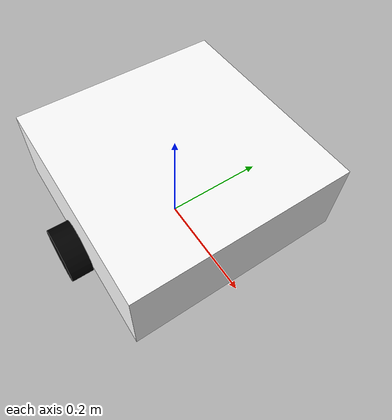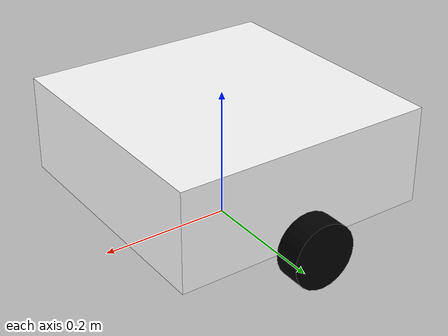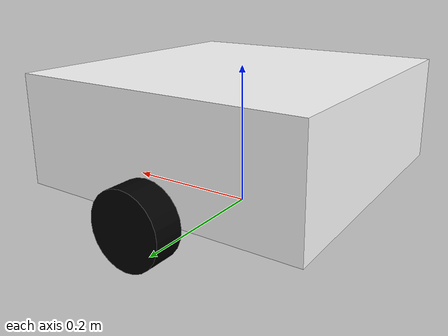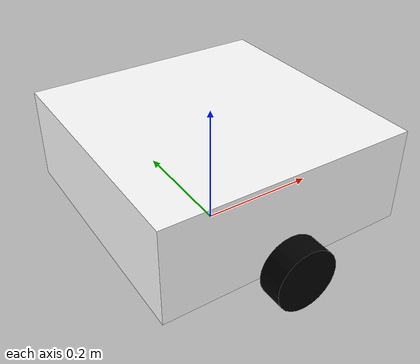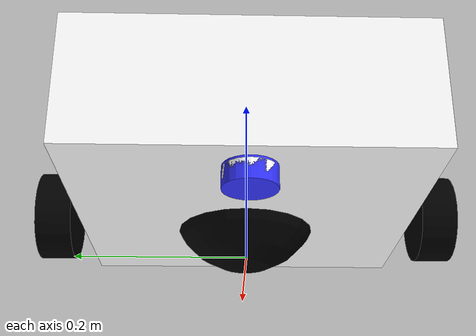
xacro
<?xml version="1.0"?>
<robot xmlns:xacro="http://www.ros.org/wiki/xacro"  name="robot">

<xacro:include filename="inertia_macro.xacro"/>

<material name="white">
    <color rgba = "1 1 1 1"/>
</material>

<material name="orange">
    <color rgba="1 0.3 0.1 1" />
</material>

<material name="blue">
    <color rgba="0.2 0.2 1 1" />
</material>

<material name ="black">
    <color rgba="0 0 0 1" />
</material>

<link name="base_link">

</link>

<joint name="chassis_joint" type="fixed">
    <parent link="base_link"/>
    <child link="chassis" />
    <origin xyz="-0.2 0 0.05"/>
</joint>

<link name="chassis">
<visual>
    <origin xyz="0.2 0 0.075" />
    <geometry>
        <box size ="0.4 0.4 0.15" />
    </geometry>
    <material name="white" />
</visual>
<collision>
    <origin xyz="0.2 0 0.075" />
    <geometry>
        <box size ="0.4 0.4 0.15" />
    </geometry>
</collision>
<xacro:inertial_box mass="0.5" x="0.4" y="0.4" z="0.15">
    <origin xyz="0.2 0 0.075" rpy="0 0 0"/>
</xacro:inertial_box>

</link>

<gazebo reference = "chassis">
<visual><material>
    <ambient>1 1 1 1</ambient>
    <diffuse>1 1 1 1</diffuse>
    <specular>1 1 1 1</specular>
</material></visual>
</gazebo>

<joint name="left_wheel_joint" type="continuous">
    <parent link="base_link"/>
    <child link="left_wheel"/>
    <origin xyz="0 0.22 0.05"/>
    <axis xyz="0 1 0" />
</joint>

<link name="left_wheel">
<visual>
    <origin xyz="0 0 0" rpy="1.5708 0 0"/>
    <geometry>
        <cylinder radius="0.05" length="0.04"/>
    </geometry>
    <material name="black"/>
</visual>
<collision>
    <origin xyz="0 0 0" rpy="1.5708 0 0"/>
    <geometry>
        <cylinder radius="0.05" length="0.04"/>
    </geometry>
</collision>
<xacro:inertial_cylinder mass="0.1" length="0.04" radius="0.05">
    <origin xyz="0 0 0" rpy="1.5708 0 0"/>
</xacro:inertial_cylinder>
</link>

<gazebo reference="left_wheel">
<visual><material>
    <ambient>0 0 0 1</ambient>
    <diffuse>0 0 0 1</diffuse>
    <specular>0 0 0 1</specular>
</material></visual>
</gazebo>

<joint name="right_wheel_joint" type="continuous">
    <parent link="base_link"/>
    <child link="right_wheel"/>
    <origin xyz="0 -0.22 0.05"/>
    <axis xyz="0 1 0" />
</joint>

<link name="right_wheel">
<visual>
    <origin xyz="0 0 0" rpy="1.5708 0 0"/>
    <geometry>
        <cylinder radius="0.05" length="0.04" />
    </geometry>
    <material name="black"/>
</visual>
<collision>
    <origin xyz="0 0 0" rpy="1.5708 0 0"/>
    <geometry>
        <cylinder radius="0.05" length="0.04" />
    </geometry>
</collision>
<xacro:inertial_cylinder mass="0.1" length="0.04" radius="0.05">
    <origin xyz="0 0 0" rpy="1.5708 0 0" />
</xacro:inertial_cylinder>
</link>

<gazebo reference="right_wheel">
<visual><material>
    <ambient>0 0 0 1</ambient>
    <diffuse>0 0 0 1</diffuse>
    <specular>0 0 0 1</specular>
</material></visual>
</gazebo>

<joint name ="caster_wheel_joint" type="fixed">
    <parent link="chassis"/>
    <child link="caster_wheel" />
    <origin xyz="0.25 0 0.045" />
</joint>

<link name="caster_wheel">
<visual>
    <origin xyz="0 0 0" rpy="0 0 0"/>
    <geometry>
        <sphere radius="0.095"/>
    </geometry>
    <material name="black"/>
</visual>
<collision>
    <origin xyz="0 0 0" rpy="0 0 0"/>
    <geometry>
        <sphere radius="0.095"/>
    </geometry>
</collision>
<xacro:inertial_sphere mass="0.1" radius="0.095">
    <origin xyz="0 0 0" rpy="0 0 0" />
</xacro:inertial_sphere>
</link>

<gazebo reference="caster_wheel">
<visual><material>
    <ambient>0.2 0.2 1 1</ambient>
    <diffuse>0.2 0.2 1 1</diffuse>
    <specular>0.2 0.2 1 1</specular>
</material></visual>
<mu1 value="0.001"/>
<mu2 value="0.001"/>
</gazebo>

<joint name="dvl_joint" type="fixed">
    <parent link="chassis"/>
    <child link="dvl_link"/>
    <origin xyz="0.05 0 -0.01" rpy="0 0 0"/>
</joint>

<link name="dvl_link">
<visual>
    <origin xyz="0 0 0" rpy="0 0 0"/>
    <geometry>
        <cylinder radius="0.03" length="0.03"/>
    </geometry>
    <material name="blue" />
</visual>
<collision>
    <origin xyz="0 0 0" rpy="0 0 0"/>
    <geometry>
        <cylinder radius="0.03" length="0.03" />
    </geometry>
</collision>
</link>

<joint name="dvl_frame_joint" type="fixed">
    <parent link="dvl_link"/>
    <child link="dvl_frame"/>
    <origin xyz="0 0 0" rpy="0 3.14159 0"/>
</joint>

<link name="dvl_frame">
<visual>
    <origin xyz="0 0 0" rpy="0 0 0"/>
    <geometry>
        <cylinder radius="0.03" length="0.015"/>
    </geometry>
    <material name="white"/>
</visual>
<collision>
    <origin xyz="0 0 0" rpy="0 0 0"/>
    <geometry>
        <cylinder radius="0.03" length="0.015"/>
    </geometry>
</collision>
</link>
</robot>

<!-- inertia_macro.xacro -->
<robot xmlns:xacro="http://www.ros.org/wiki/xacro">

    <xacro:macro name="inertial_sphere" params="mass radius *origin">
        <inertial>
            <xacro:insert_block name="origin"/>
            <mass value="${mass}"/>
            <inertia ixx="${(2/5) * mass * (radius*radius)}" ixy="0.0" ixz="0.0"
                     iyy="${(2/5) * mass * (radius*radius)}" iyz="0.0"
                     izz="${(2/5) * mass * (radius*radius)}"/>
        </inertial>
    </xacro:macro>

    <xacro:macro name="inertial_box" params="mass x y z *origin">
        <inertial>
            <xacro:insert_block name="origin"/>
            <mass value="${mass}"/>
            <inertia ixx="${(1/12) * mass * (y*y + z*z)}" ixy="0.0" ixz="0.0"
                     iyy="${(1/12) * mass * (x*x + z*z)}" iyz="0.0"
                     izz="${(1/12) * mass * (x*x + y*y)}"/>
        </inertial>
    </xacro:macro>

    <xacro:macro name="inertial_cylinder" params="mass length radius *origin">
        <inertial>
            <xacro:insert_block name="origin"/>
            <mass value="${mass}"/>
            <inertia ixx="${(1/12) * mass * (3*radius*radius + length*length)}" ixy="0.0" ixz="0.0"
                     iyy="${(1/12) * mass * (3*radius*radius + length*length)}" iyz="0.0"
                     izz="${(1/2) * mass * (radius*radius)}"/>
        </inertial>
    </xacro:macro>

</robot>
